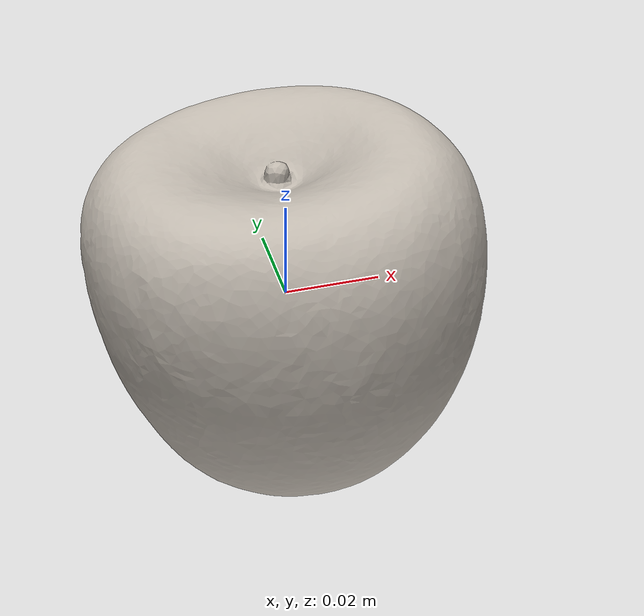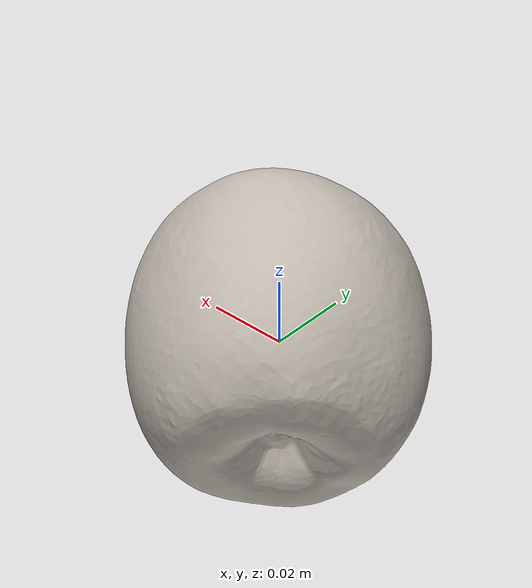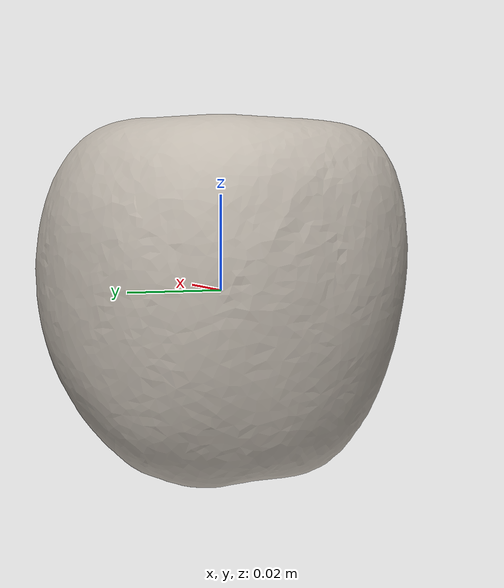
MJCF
<mujoco model="apple">
  <default>
    <default class="visual">
      <geom group="1" type="mesh" contype="0" conaffinity="0"/>
    </default>
    <default class="collision">
      <geom group="0" type="mesh"/>
    </default>
  </default>
  <asset>
    <texture type="2d" name="apple" file="apple.png"/>
    <material name="apple" texture="apple" specular="0.4000000000000001" shininess="0.001"/>
    <mesh name="apple" file="apple.obj"/>
  </asset>
  <worldbody>
    <body>
    <body name="object">
      <geom material="apple" mesh="apple" class="visual"/>
      <geom mesh="apple" class="collision"/>
    </body>
	      <site rgba="0 0 0 0" size="0.005" pos="0 0 -0.04" name="bottom_site" />
	      <site rgba="0 0 0 0" size="0.005" pos="0 0 0.04" name="top_site" />
	      <site rgba="0 0 0 0" size="0.005" pos="0.005 0.005 0" name="horizontal_radius_site" />
   </body>
  </worldbody>
</mujoco>
